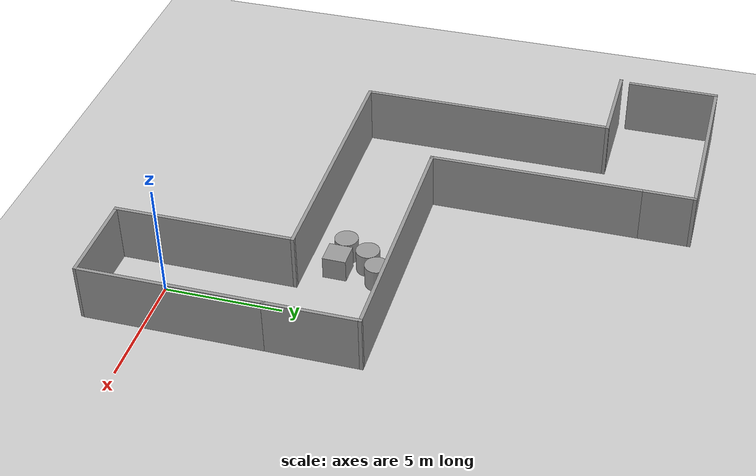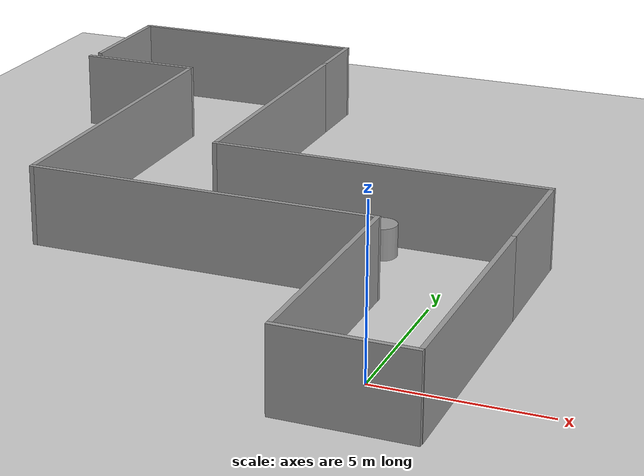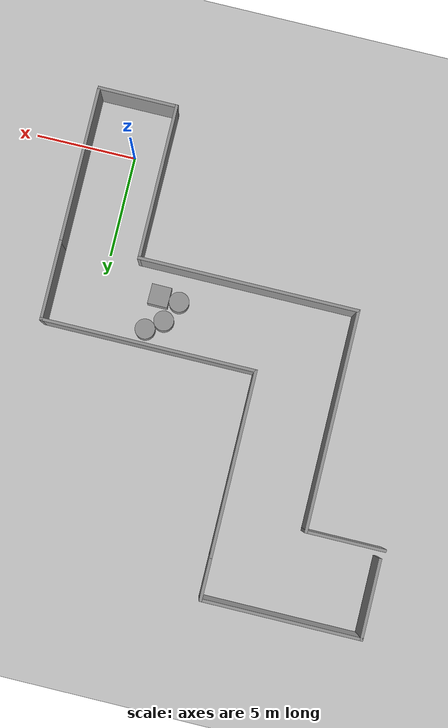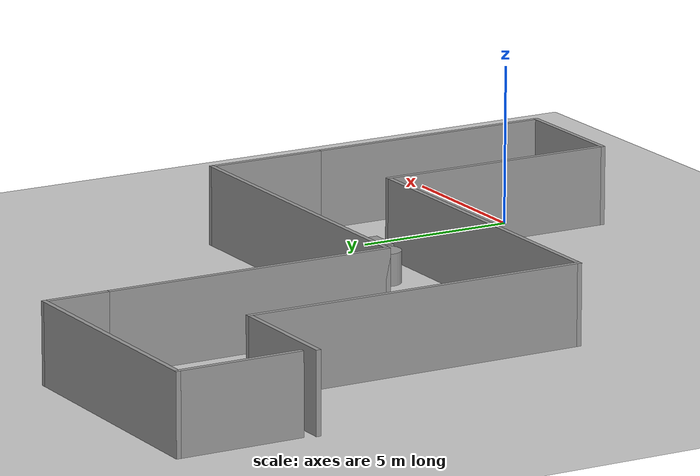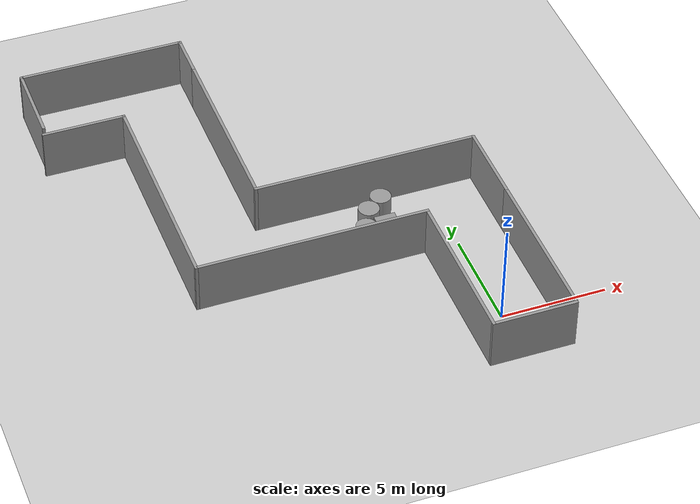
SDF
<sdf version="1.6">
 <world name="default">
  <light name="sun" type="directional">
   <pose>0 0 10 0 -0 0</pose>
   <diffuse>0.8 0.8 0.8 1</diffuse>
   <specular>0.2 0.2 0.2 1</specular>
   <attenuation>
    <range>1000</range>
    <constant>0.9</constant>
    <linear>0.01</linear>
    <quadratic>0.001</quadratic>
   </attenuation>
   <direction>-0.5 0.1 -0.9</direction>
  </light>
  <model name="ground_plane">
   <static>1</static>
   <link name="link">
    <collision name="collision">
     <geometry><plane><normal>0 0 1</normal><size>100 100</size></plane></geometry>
     <surface>
      <contact><collide_bitmask>65535</collide_bitmask></contact>
      <friction><ode><mu>100</mu><mu2>50</mu2></ode></friction>
     </surface>
    </collision>
    <visual name="visual">
     <cast_shadows>0</cast_shadows>
     <geometry><plane><normal>0 0 1</normal><size>100 100</size></plane></geometry>
     <material>
      <script><uri>file://media/materials/scripts/gazebo.material</uri><name>Gazebo/Grey</name></script>
     </material>
    </visual>
   </link>
  </model>
  <gravity>0 0 -9.8</gravity>
  <magnetic_field>6e-06 2.3e-05 -4.2e-05</magnetic_field>
  <atmosphere type="adiabatic"/>
  <physics name="default_physics" default="0" type="ode">
   <max_step_size>0.001</max_step_size>
   <real_time_factor>1</real_time_factor>
   <real_time_update_rate>1000</real_time_update_rate>
  </physics>
  <scene><ambient>0.4 0.4 0.4 1</ambient><background>0.7 0.7 0.7 1</background><shadows>1</shadows></scene>
  <spherical_coordinates>
   <surface_model>EARTH_WGS84</surface_model>
   <latitude_deg>0</latitude_deg>
   <longitude_deg>0</longitude_deg>
   <elevation>0</elevation>
   <heading_deg>0</heading_deg>
  </spherical_coordinates>
  <model name="task12">
   <pose>-6.98276 8.85366 0 0 -0 0</pose>
   <link name="Wall_0">
    <collision name="Wall_0_Collision">
     <geometry><box><size>4 0.15 2.5</size></box></geometry>
     <pose>0 0 1.25 0 -0 0</pose>
    </collision>
    <visual name="Wall_0_Visual">
     <pose>0 0 1.25 0 -0 0</pose>
     <geometry><box><size>4 0.15 2.5</size></box></geometry>
     <material>
      <script><uri>file://media/materials/scripts/gazebo.material</uri><name>Gazebo/Grey</name></script>
      <ambient>1 1 1 1</ambient>
     </material>
     <meta><layer>0</layer></meta>
    </visual>
    <pose>7.3415 -11.3885 0 0 -0 0</pose>
   </link>
   <link name="Wall_10">
    <collision name="Wall_10_Collision">
     <geometry><box><size>8 0.15 2.5</size></box></geometry>
     <pose>0 0 1.25 0 -0 0</pose>
    </collision>
    <visual name="Wall_10_Visual">
     <pose>0 0 1.25 0 -0 0</pose>
     <geometry><box><size>8 0.15 2.5</size></box></geometry>
     <material>
      <script><uri>file://media/materials/scripts/gazebo.material</uri><name>Gazebo/Grey</name></script>
      <ambient>1 1 1 1</ambient>
     </material>
     <meta><layer>0</layer></meta>
    </visual>
    <pose>-5.2415 11.3885 0 0 -0 3.14159</pose>
   </link>
   <link name="Wall_11">
    <collision name="Wall_11_Collision">
     <geometry><box><size>4 0.15 2.5</size></box></geometry>
     <pose>0 0 1.25 0 -0 0</pose>
    </collision>
    <visual name="Wall_11_Visual">
     <pose>0 0 1.25 0 -0 0</pose>
     <geometry><box><size>4 0.15 2.5</size></box></geometry>
     <material>
      <script><uri>file://media/materials/scripts/gazebo.material</uri><name>Gazebo/Grey</name></script>
      <ambient>1 1 1 1</ambient>
     </material>
     <meta><layer>0</layer></meta>
    </visual>
    <pose>-9.1665 9.46348 0 0 -0 -1.5708</pose>
   </link>
   <link name="Wall_13">
    <collision name="Wall_13_Collision">
     <geometry><box><size>11 0.15 2.5</size></box></geometry>
     <pose>0 0 1.25 0 -0 0</pose>
    </collision>
    <visual name="Wall_13_Visual">
     <pose>0 0 1.25 0 -0 0</pose>
     <geometry><box><size>11 0.15 2.5</size></box></geometry>
     <material>
      <script><uri>file://media/materials/scripts/gazebo.material</uri><name>Gazebo/Grey</name></script>
      <ambient>1 1 1 1</ambient>
     </material>
     <meta><layer>0</layer></meta>
    </visual>
    <pose>-0.008499 -3.78848 0 0 -0 3.14159</pose>
   </link>
   <link name="Wall_14">
    <collision name="Wall_14_Collision">
     <geometry><box><size>11 0.15 2.5</size></box></geometry>
     <pose>0 0 1.25 0 -0 0</pose>
    </collision>
    <visual name="Wall_14_Visual">
     <pose>0 0 1.25 0 -0 0</pose>
     <geometry><box><size>11 0.15 2.5</size></box></geometry>
     <material>
      <script><uri>file://media/materials/scripts/gazebo.material</uri><name>Gazebo/Grey</name></script>
      <ambient>1 1 1 1</ambient>
     </material>
     <meta><layer>0</layer></meta>
    </visual>
    <pose>-5.4335 1.63652 0 0 -0 1.5708</pose>
   </link>
   <link name="Wall_15">
    <collision name="Wall_15_Collision">
     <geometry><box><size>4 0.15 2.5</size></box></geometry>
     <pose>0 0 1.25 0 -0 0</pose>
    </collision>
    <visual name="Wall_15_Visual">
     <pose>0 0 1.25 0 -0 0</pose>
     <geometry><box><size>4 0.15 2.5</size></box></geometry>
     <material>
      <script><uri>file://media/materials/scripts/gazebo.material</uri><name>Gazebo/Grey</name></script>
      <ambient>1 1 1 1</ambient>
     </material>
     <meta><layer>0</layer></meta>
    </visual>
    <pose>-7.3585 7.06152 0 0 -0 3.14159</pose>
   </link>
   <link name="Wall_2">
    <collision name="Wall_2_Collision">
     <geometry><box><size>7.75 0.15 2.5</size></box></geometry>
     <pose>0 0 1.25 0 -0 0</pose>
    </collision>
    <visual name="Wall_2_Visual">
     <pose>0 0 1.25 0 -0 0</pose>
     <geometry><box><size>7.75 0.15 2.5</size></box></geometry>
     <material>
      <script><uri>file://media/materials/scripts/gazebo.material</uri><name>Gazebo/Grey</name></script>
      <ambient>1 1 1 1</ambient>
     </material>
     <meta><layer>0</layer></meta>
    </visual>
    <pose>9.2835 -7.46152 0 0 -0 1.5708</pose>
   </link>
   <link name="Wall_4">
    <collision name="Wall_4_Collision">
     <geometry><box><size>7.75 0.15 2.5</size></box></geometry>
     <pose>0 0 1.25 0 -0 0</pose>
    </collision>
    <visual name="Wall_4_Visual">
     <pose>0 0 1.25 0 -0 0</pose>
     <geometry><box><size>7.75 0.15 2.5</size></box></geometry>
     <material>
      <script><uri>file://media/materials/scripts/gazebo.material</uri><name>Gazebo/Grey</name></script>
      <ambient>1 1 1 1</ambient>
     </material>
     <meta><layer>0</layer></meta>
    </visual>
    <pose>5.4165 -7.58848 0 0 -0 1.5708</pose>
   </link>
   <link name="Wall_6">
    <collision name="Wall_6_Collision">
     <geometry><box><size>4 0.15 2.5</size></box></geometry>
     <pose>0 0 1.25 0 -0 0</pose>
    </collision>
    <visual name="Wall_6_Visual">
     <pose>0 0 1.25 0 -0 0</pose>
     <geometry><box><size>4 0.15 2.5</size></box></geometry>
     <material>
      <script><uri>file://media/materials/scripts/gazebo.material</uri><name>Gazebo/Grey</name></script>
      <ambient>1 1 1 1</ambient>
     </material>
     <meta><layer>0</layer></meta>
    </visual>
    <pose>9.2835 -1.73652 0 0 -0 1.5708</pose>
   </link>
   <link name="Wall_7">
    <collision name="Wall_7_Collision">
     <geometry><box><size>10.75 0.15 2.5</size></box></geometry>
     <pose>0 0 1.25 0 -0 0</pose>
    </collision>
    <visual name="Wall_7_Visual">
     <pose>0 0 1.25 0 -0 0</pose>
     <geometry><box><size>10.75 0.15 2.5</size></box></geometry>
     <material>
      <script><uri>file://media/materials/scripts/gazebo.material</uri><name>Gazebo/Grey</name></script>
      <ambient>1 1 1 1</ambient>
     </material>
     <meta><layer>0</layer></meta>
    </visual>
    <pose>3.9835 0.188482 0 0 -0 3.14159</pose>
   </link>
   <link name="Wall_8">
    <collision name="Wall_8_Collision">
     <geometry><box><size>9.25 0.15 2.5</size></box></geometry>
     <pose>0 0 1.25 0 -0 0</pose>
    </collision>
    <visual name="Wall_8_Visual">
     <pose>0 0 1.25 0 -0 0</pose>
     <geometry><box><size>9.25 0.15 2.5</size></box></geometry>
     <material>
      <script><uri>file://media/materials/scripts/gazebo.material</uri><name>Gazebo/Grey</name></script>
      <ambient>1 1 1 1</ambient>
     </material>
     <meta><layer>0</layer></meta>
    </visual>
    <pose>-1.3165 4.73848 0 0 -0 1.5708</pose>
   </link>
   <link name="Wall_9">
    <collision name="Wall_9_Collision">
     <geometry><box><size>2.25 0.15 2.5</size></box></geometry>
     <pose>0 0 1.25 0 -0 0</pose>
    </collision>
    <visual name="Wall_9_Visual">
     <pose>0 0 1.25 0 -0 0</pose>
     <geometry><box><size>2.25 0.15 2.5</size></box></geometry>
     <material>
      <script><uri>file://media/materials/scripts/gazebo.material</uri><name>Gazebo/Grey</name></script>
      <ambient>1 1 1 1</ambient>
     </material>
     <meta><layer>0</layer></meta>
    </visual>
    <pose>-1.3165 10.3385 0 0 -0 1.5708</pose>
   </link>
   <static>1</static>
  </model>
  <model name="unit_box">
   <pose>-2.8853 6.46207 0.5 -0 -0 -0.008533</pose>
   <link name="link">
    <inertial>
     <mass>1</mass>
     <inertia>
      <ixx>0.166667</ixx>
      <ixy>0</ixy>
      <ixz>0</ixz>
      <iyy>0.166667</iyy>
      <iyz>0</iyz>
      <izz>0.166667</izz>
     </inertia>
    </inertial>
    <collision name="collision"><geometry><box><size>1 1 1</size></box></geometry></collision>
    <visual name="visual">
     <geometry><box><size>1 1 1</size></box></geometry>
     <material>
      <script><name>Gazebo/Grey</name><uri>file://media/materials/scripts/gazebo.material</uri></script>
     </material>
    </visual>
   </link>
  </model>
  <model name="unit_cylinder">
   <pose>-3.88466 6.54301 0.499994 0 4e-06 0.003857</pose>
   <link name="link">
    <inertial>
     <mass>1</mass>
     <inertia><ixx>0.145833</ixx><ixy>0</ixy><ixz>0</ixz><iyy>0.145833</iyy><iyz>0</iyz><izz>0.125</izz></inertia>
    </inertial>
    <collision name="collision">
     <geometry><cylinder><radius>0.5</radius><length>1</length></cylinder></geometry>
    </collision>
    <visual name="visual">
     <geometry><cylinder><radius>0.5</radius><length>1</length></cylinder></geometry>
     <material>
      <script><name>Gazebo/Grey</name><uri>file://media/materials/scripts/gazebo.material</uri></script>
     </material>
    </visual>
   </link>
  </model>
  <model name="unit_cylinder_0">
   <pose>-2.57357 8.21876 0.499993 -3e-06 4e-06 3.5e-05</pose>
   <link name="link">
    <inertial>
     <mass>1</mass>
     <inertia><ixx>0.145833</ixx><ixy>0</ixy><ixz>0</ixz><iyy>0.145833</iyy><iyz>0</iyz><izz>0.125</izz></inertia>
    </inertial>
    <collision name="collision">
     <geometry><cylinder><radius>0.5</radius><length>1</length></cylinder></geometry>
    </collision>
    <visual name="visual">
     <geometry><cylinder><radius>0.5</radius><length>1</length></cylinder></geometry>
     <material>
      <script><name>Gazebo/Grey</name><uri>file://media/materials/scripts/gazebo.material</uri></script>
     </material>
    </visual>
   </link>
  </model>
  <model name="unit_cylinder_1">
   <pose>-3.37131 7.61571 0.499997 -4e-06 4e-06 2.5e-05</pose>
   <link name="link">
    <inertial>
     <mass>1</mass>
     <inertia><ixx>0.145833</ixx><ixy>0</ixy><ixz>0</ixz><iyy>0.145833</iyy><iyz>0</iyz><izz>0.125</izz></inertia>
    </inertial>
    <collision name="collision">
     <geometry><cylinder><radius>0.5</radius><length>1</length></cylinder></geometry>
    </collision>
    <visual name="visual">
     <geometry><cylinder><radius>0.5</radius><length>1</length></cylinder></geometry>
     <material>
      <script><name>Gazebo/Grey</name><uri>file://media/materials/scripts/gazebo.material</uri></script>
     </material>
    </visual>
   </link>
  </model>
 </world>
</sdf>
